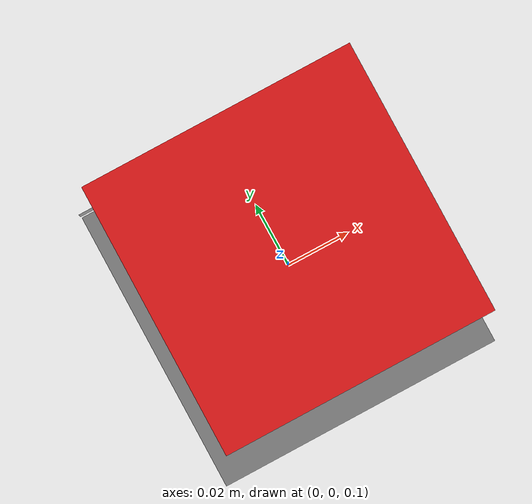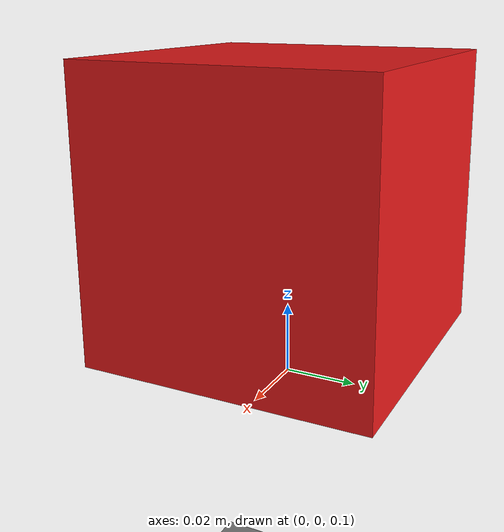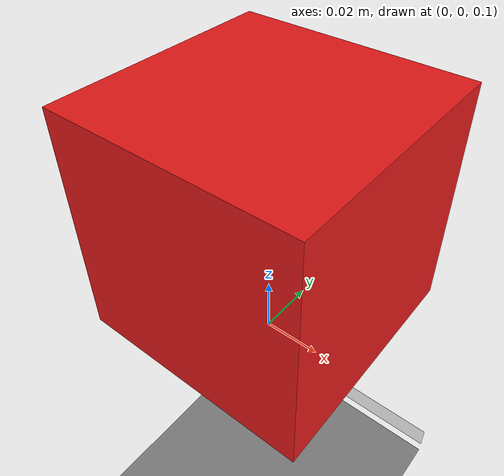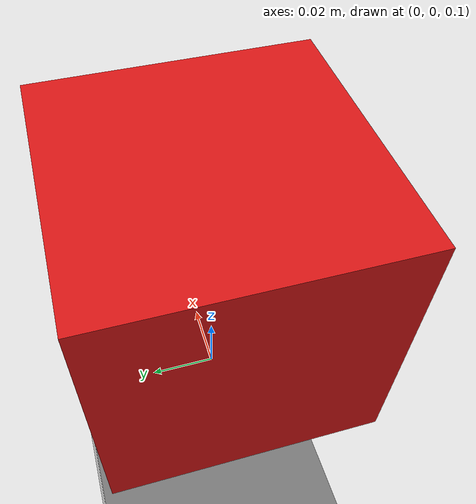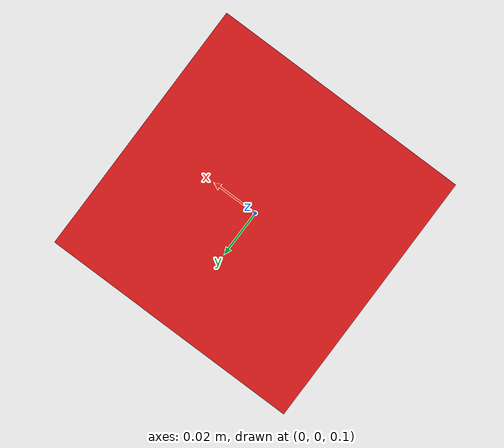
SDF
<?xml version="1.0"?>
<sdf version="1.9">
  <world name="drop_demo">
    <physics name="1ms" type="ignore">
      <max_step_size>0.004</max_step_size>
      <real_time_factor>1.0</real_time_factor>
    </physics>
    <plugin filename="gz-sim-physics-system" name="gz::sim::systems::Physics"/>
    <plugin filename="gz-sim-user-commands-system" name="gz::sim::systems::UserCommands"/>
    <plugin filename="gz-sim-scene-broadcaster-system" name="gz::sim::systems::SceneBroadcaster"/>
    <plugin filename="gz-sim-sensors-system" name="gz::sim::systems::Sensors">
      <render_engine>ogre2</render_engine>
    </plugin>
    <plugin filename="gz-sim-imu-system" name="gz::sim::systems::Imu"/>
    <plugin filename="gz-sim-magnetometer-system" name="gz::sim::systems::Magnetometer"/>
    <plugin filename="gz-sim-air-pressure-system" name="gz::sim::systems::AirPressure"/>
    <plugin filename="gz-sim-navsat-system" name="gz::sim::systems::NavSat"/>
    <spherical_coordinates>
      <surface_model>EARTH_WGS84</surface_model>
      <world_frame_orientation>ENU</world_frame_orientation>
      <latitude_deg>47.397971057728974</latitude_deg>
      <longitude_deg>8.546163739800146</longitude_deg>
      <elevation>0</elevation>
    </spherical_coordinates>
    <light type="directional" name="sun">
      <cast_shadows>true</cast_shadows>
      <pose>0 0 10 0 0 0</pose>
      <direction>-0.5 0.1 -0.9</direction>
    </light>
    <model name="ground_plane">
      <static>true</static>
      <link name="link">
        <collision name="collision">
          <geometry><plane><normal>0 0 1</normal></plane></geometry>
        </collision>
        <visual name="visual">
          <geometry><plane><normal>0 0 1</normal><size>200 200</size></plane></geometry>
          <material><diffuse>0.5 0.5 0.5 1</diffuse></material>
        </visual>
      </link>
    </model>
    <include>
      <uri>model://apriltag_marker</uri>
      <name>apriltag_marker_0</name>
      <pose>0.02 26.0 0.01 0 0 0</pose>
    </include>
    <include>
      <uri>model://payload_box</uri>
      <name>payload_box_0</name>
      <pose>0 0 0.15 0 0 0</pose>
    </include>
  </world>
</sdf>

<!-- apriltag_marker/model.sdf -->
<sdf version="1.9">
  <model name="apriltag_marker">
    <static>true</static>
    <link name="link">
      <visual name="visual">
        <geometry>
          <box><size>0.5 0.5 0.01</size></box>
        </geometry>
        <material>
          <diffuse>1 1 1 1</diffuse>
          <pbr>
            <metal>
              <albedo_map>materials/textures/tag36_11_00000.png</albedo_map>
            </metal>
          </pbr>
        </material>
      </visual>
      <collision name="collision">
        <geometry><box><size>0.5 0.5 0.01</size></box></geometry>
      </collision>
    </link>
  </model>
</sdf>

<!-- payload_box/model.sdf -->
<sdf version="1.9">
  <model name="payload_box">
    <link name="payload_link">
      <inertial>
        <mass>0.15</mass>
        <inertia>
          <ixx>0.0001</ixx><iyy>0.0001</iyy><izz>0.0001</izz>
          <ixy>0</ixy><ixz>0</ixz><iyz>0</iyz>
        </inertia>
      </inertial>
      <visual name="visual">
        <geometry><box><size>0.08 0.08 0.08</size></box></geometry>
        <material><diffuse>0.9 0.1 0.1 1</diffuse></material>
      </visual>
      <collision name="collision">
        <geometry><box><size>0.08 0.08 0.08</size></box></geometry>
      </collision>
    </link>
  </model>
</sdf>
